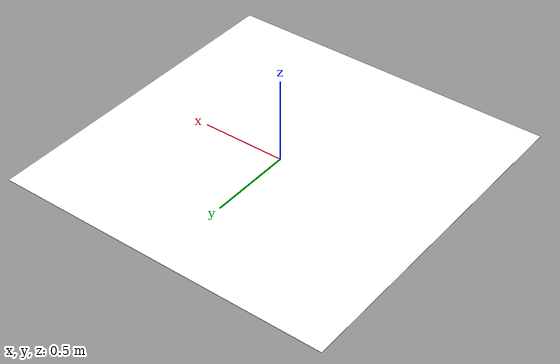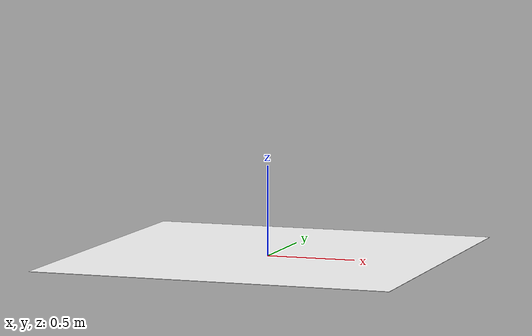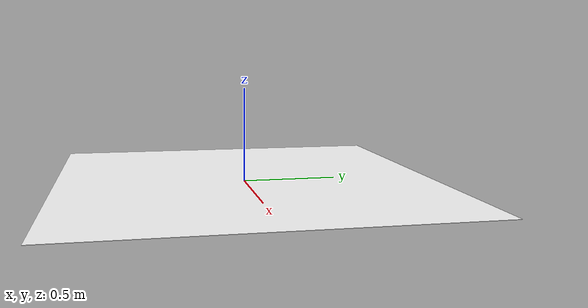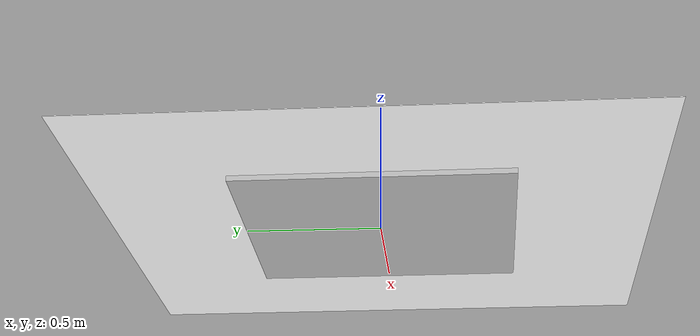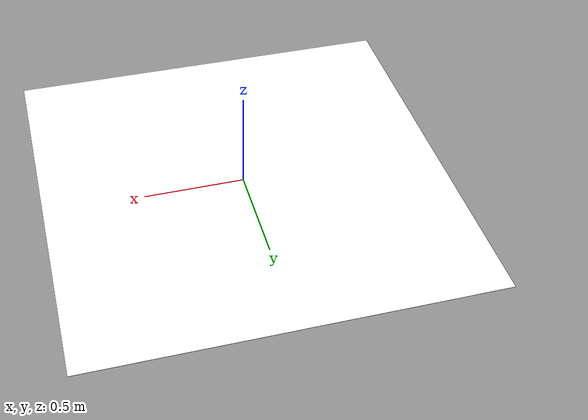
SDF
<?xml version='1.0'?>
<sdf version="1.9">
<model name="aruco_marker">
  <static>true</static>
  <link name="link">

    <collision name="collision">
      <geometry>
        <box>
          <size>2 2 0.02</size>
        </box>
      </geometry>
    </collision>

    <visual name="base">
      <geometry>
        <box>
          <size>1 1 0.02</size>
        </box>
      </geometry>
    </visual>

    <visual name="marker">
      <pose>0 0 0.011 0 0 0</pose>
      <geometry>
        <plane>
          <size>2 2</size>
        </plane>
      </geometry>
     <material>
  <ambient>1 1 1 1</ambient>
  <diffuse>1 1 1 1</diffuse>
  <pbr>
    <metal>
      <albedo_map>model://aruco_marker/materials/textures/aruco_0.png</albedo_map>
    </metal>
  </pbr>
</material>
    </visual>

  </link>
</model>
</sdf>
